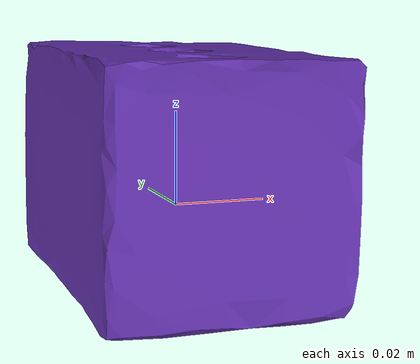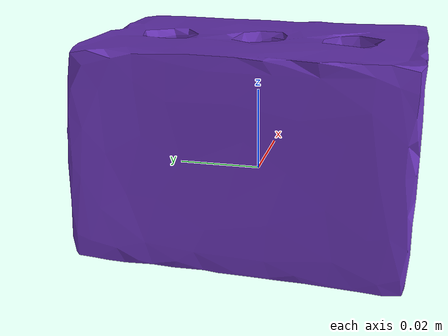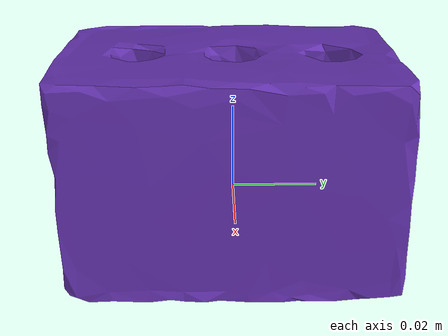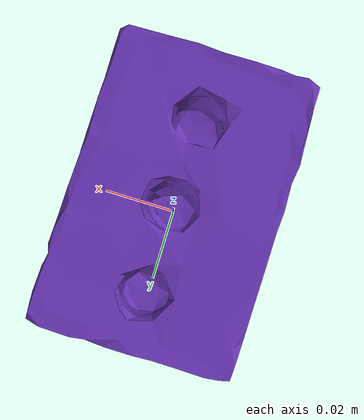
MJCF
<mujoco model="top_watertight_tiny">

  <asset>
    <mesh file="top_watertight_tiny.obj"/>
    <mesh file="top_watertight_tiny_collision_0.obj"/>
    <mesh file="top_watertight_tiny_collision_1.obj"/>
    <mesh file="top_watertight_tiny_collision_2.obj"/>
    <mesh file="top_watertight_tiny_collision_3.obj"/>
    <mesh file="top_watertight_tiny_collision_4.obj"/>
    <mesh file="top_watertight_tiny_collision_5.obj"/>
    <mesh file="top_watertight_tiny_collision_6.obj"/>
    <mesh file="top_watertight_tiny_collision_7.obj"/>
    <mesh file="top_watertight_tiny_collision_8.obj"/>
    <mesh file="top_watertight_tiny_collision_9.obj"/>
    <mesh file="top_watertight_tiny_collision_10.obj"/>
    <mesh file="top_watertight_tiny_collision_11.obj"/>
    <mesh file="top_watertight_tiny_collision_12.obj"/>
    <mesh file="top_watertight_tiny_collision_13.obj"/>
    <mesh file="top_watertight_tiny_collision_14.obj"/>
    <mesh file="top_watertight_tiny_collision_15.obj"/>
    <mesh file="top_watertight_tiny_collision_16.obj"/>
    <mesh file="top_watertight_tiny_collision_17.obj"/>
    <mesh file="top_watertight_tiny_collision_18.obj"/>
    <mesh file="top_watertight_tiny_collision_19.obj"/>
    <mesh file="top_watertight_tiny_collision_20.obj"/>
    <mesh file="top_watertight_tiny_collision_21.obj"/>
    <mesh file="top_watertight_tiny_collision_22.obj"/>
    <mesh file="top_watertight_tiny_collision_23.obj"/>
    <mesh file="top_watertight_tiny_collision_24.obj"/>
    <mesh file="top_watertight_tiny_collision_25.obj"/>
    <mesh file="top_watertight_tiny_collision_26.obj"/>
    <mesh file="top_watertight_tiny_collision_27.obj"/>
    <mesh file="top_watertight_tiny_collision_28.obj"/>
  </asset>
  <worldbody>
    <body name="top_watertight_tiny">
      <freejoint/>
      <geom solimp="0.90 0.95 0.001" solref="0.02 1.0" density="100" friction="0.95 0.4 0.3"  rgba="0.4 0.2 0.7 1" mesh="top_watertight_tiny" group="2" type="mesh" contype="0" conaffinity="0"/>
      <geom solimp="0.90 0.95 0.001" solref="0.02 1.0" density="100" friction="0.95 0.4 0.3"  mesh="top_watertight_tiny_collision_0" rgba="0.025823441132073355 0.6271719646318137 0.36941995914812387 1" group="3" type="mesh"/>
      <geom solimp="0.90 0.95 0.001" solref="0.02 1.0" density="100" friction="0.95 0.4 0.3"  mesh="top_watertight_tiny_collision_1" rgba="0.09423527847812752 0.5227937994903934 0.04501222815278705 1" group="3" type="mesh"/>
      <geom solimp="0.90 0.95 0.001" solref="0.02 1.0" density="100" friction="0.95 0.4 0.3"  mesh="top_watertight_tiny_collision_2" rgba="0.5244100819156979 0.41845069522165157 0.3644837877203284 1" group="3" type="mesh"/>
      <geom solimp="0.90 0.95 0.001" solref="0.02 1.0" density="100" friction="0.95 0.4 0.3"  mesh="top_watertight_tiny_collision_3" rgba="0.14844472303284395 0.15294569088326837 0.2033051861828512 1" group="3" type="mesh"/>
      <geom solimp="0.90 0.95 0.001" solref="0.02 1.0" density="100" friction="0.95 0.4 0.3"  mesh="top_watertight_tiny_collision_4" rgba="0.5219111643342369 0.7985978727947662 0.9031906424575031 1" group="3" type="mesh"/>
      <geom solimp="0.90 0.95 0.001" solref="0.02 1.0" density="100" friction="0.95 0.4 0.3"  mesh="top_watertight_tiny_collision_5" rgba="0.3001152072078028 0.5900937484636235 0.9355727399489935 1" group="3" type="mesh"/>
      <geom solimp="0.90 0.95 0.001" solref="0.02 1.0" density="100" friction="0.95 0.4 0.3"  mesh="top_watertight_tiny_collision_6" rgba="0.3677350973969682 0.31654360890147737 0.9380893436100208 1" group="3" type="mesh"/>
      <geom solimp="0.90 0.95 0.001" solref="0.02 1.0" density="100" friction="0.95 0.4 0.3"  mesh="top_watertight_tiny_collision_7" rgba="0.21127469858264014 0.5076521100975994 0.6638113340190793 1" group="3" type="mesh"/>
      <geom solimp="0.90 0.95 0.001" solref="0.02 1.0" density="100" friction="0.95 0.4 0.3"  mesh="top_watertight_tiny_collision_8" rgba="0.0026807989090246176 0.8385840871882569 0.12463728559347975 1" group="3" type="mesh"/>
      <geom solimp="0.90 0.95 0.001" solref="0.02 1.0" density="100" friction="0.95 0.4 0.3"  mesh="top_watertight_tiny_collision_9" rgba="0.9394411694817832 0.09491470543486824 0.40455300462437904 1" group="3" type="mesh"/>
      <geom solimp="0.90 0.95 0.001" solref="0.02 1.0" density="100" friction="0.95 0.4 0.3"  mesh="top_watertight_tiny_collision_10" rgba="0.02524593679523046 0.020703186259351525 0.1640666177672987 1" group="3" type="mesh"/>
      <geom solimp="0.90 0.95 0.001" solref="0.02 1.0" density="100" friction="0.95 0.4 0.3"  mesh="top_watertight_tiny_collision_11" rgba="0.8685426039767055 0.3346338936901925 0.28248100319813096 1" group="3" type="mesh"/>
      <geom solimp="0.90 0.95 0.001" solref="0.02 1.0" density="100" friction="0.95 0.4 0.3"  mesh="top_watertight_tiny_collision_12" rgba="0.7649435432026511 0.08237547385942656 0.7775579286756006 1" group="3" type="mesh"/>
      <geom solimp="0.90 0.95 0.001" solref="0.02 1.0" density="100" friction="0.95 0.4 0.3"  mesh="top_watertight_tiny_collision_13" rgba="0.21700709814187047 0.050120047179022964 0.1648878092232242 1" group="3" type="mesh"/>
      <geom solimp="0.90 0.95 0.001" solref="0.02 1.0" density="100" friction="0.95 0.4 0.3"  mesh="top_watertight_tiny_collision_14" rgba="0.2175785692060611 0.017265514045250785 0.05712528693987318 1" group="3" type="mesh"/>
      <geom solimp="0.90 0.95 0.001" solref="0.02 1.0" density="100" friction="0.95 0.4 0.3"  mesh="top_watertight_tiny_collision_15" rgba="0.3896721913170571 0.24982563965917737 0.6114109405019914 1" group="3" type="mesh"/>
      <geom solimp="0.90 0.95 0.001" solref="0.02 1.0" density="100" friction="0.95 0.4 0.3"  mesh="top_watertight_tiny_collision_16" rgba="0.34544691630447866 0.017991340917585252 0.7771292537587383 1" group="3" type="mesh"/>
      <geom solimp="0.90 0.95 0.001" solref="0.02 1.0" density="100" friction="0.95 0.4 0.3"  mesh="top_watertight_tiny_collision_17" rgba="0.5548206400787692 0.5756830708773918 0.1734317496132114 1" group="3" type="mesh"/>
      <geom solimp="0.90 0.95 0.001" solref="0.02 1.0" density="100" friction="0.95 0.4 0.3"  mesh="top_watertight_tiny_collision_18" rgba="0.29022934300696035 0.22244242940278258 0.3801061808296704 1" group="3" type="mesh"/>
      <geom solimp="0.90 0.95 0.001" solref="0.02 1.0" density="100" friction="0.95 0.4 0.3"  mesh="top_watertight_tiny_collision_19" rgba="0.6827504187672931 0.6308177417732581 0.5782530562331967 1" group="3" type="mesh"/>
      <geom solimp="0.90 0.95 0.001" solref="0.02 1.0" density="100" friction="0.95 0.4 0.3"  mesh="top_watertight_tiny_collision_20" rgba="0.9632299719833795 0.7511181494305524 0.9590466602637384 1" group="3" type="mesh"/>
      <geom solimp="0.90 0.95 0.001" solref="0.02 1.0" density="100" friction="0.95 0.4 0.3"  mesh="top_watertight_tiny_collision_21" rgba="0.9141515060877791 0.15104393615018286 0.27192995796879116 1" group="3" type="mesh"/>
      <geom solimp="0.90 0.95 0.001" solref="0.02 1.0" density="100" friction="0.95 0.4 0.3"  mesh="top_watertight_tiny_collision_22" rgba="0.1463326593497989 0.9351783127454827 0.4217459217738674 1" group="3" type="mesh"/>
      <geom solimp="0.90 0.95 0.001" solref="0.02 1.0" density="100" friction="0.95 0.4 0.3"  mesh="top_watertight_tiny_collision_23" rgba="0.3225165514986833 0.4110374517674287 0.7884875154643113 1" group="3" type="mesh"/>
      <geom solimp="0.90 0.95 0.001" solref="0.02 1.0" density="100" friction="0.95 0.4 0.3"  mesh="top_watertight_tiny_collision_24" rgba="0.9932082584087216 0.33113183787763556 0.7020778998651654 1" group="3" type="mesh"/>
      <geom solimp="0.90 0.95 0.001" solref="0.02 1.0" density="100" friction="0.95 0.4 0.3"  mesh="top_watertight_tiny_collision_25" rgba="0.1264089116718763 0.674819886627079 0.021732907854936312 1" group="3" type="mesh"/>
      <geom solimp="0.90 0.95 0.001" solref="0.02 1.0" density="100" friction="0.95 0.4 0.3"  mesh="top_watertight_tiny_collision_26" rgba="0.7299213306869551 0.7849205913934915 0.2911024989613319 1" group="3" type="mesh"/>
      <geom solimp="0.90 0.95 0.001" solref="0.02 1.0" density="100" friction="0.95 0.4 0.3"  mesh="top_watertight_tiny_collision_27" rgba="0.27364463914954984 0.2503156995265017 0.46624737525118554 1" group="3" type="mesh"/>
      <geom solimp="0.90 0.95 0.001" solref="0.02 1.0" density="100" friction="0.95 0.4 0.3"  mesh="top_watertight_tiny_collision_28" rgba="0.618948886150406 0.6952884710026879 0.26670541422315275 1" group="3" type="mesh"/>
    </body>
  </worldbody>
</mujoco>
